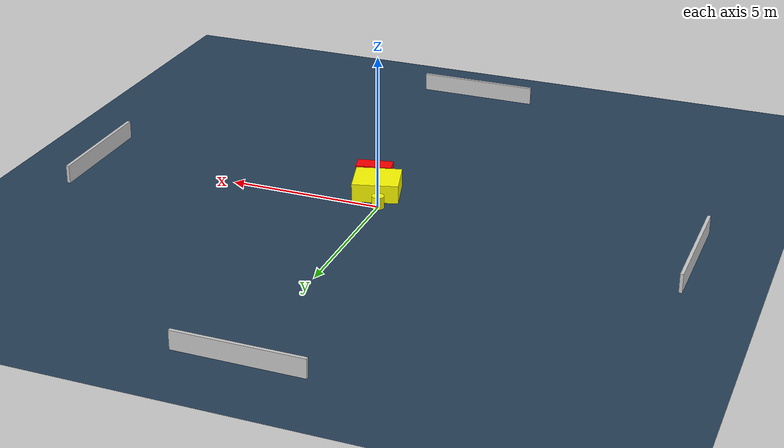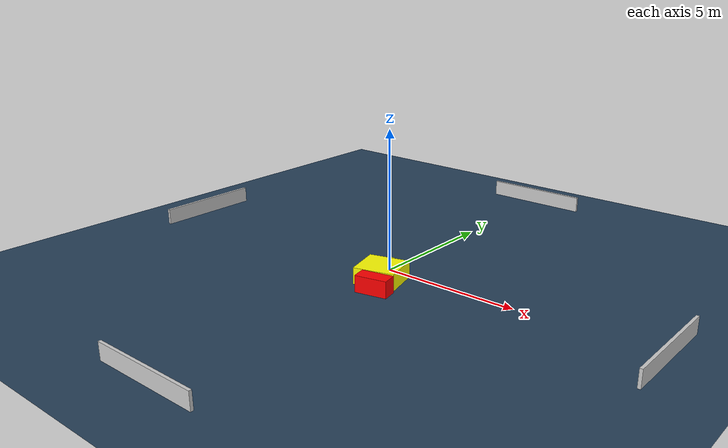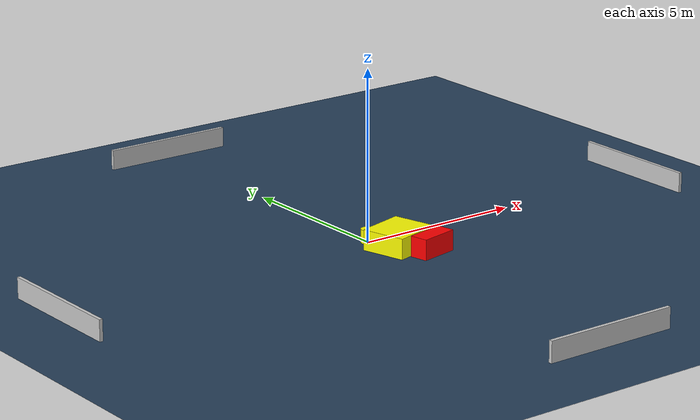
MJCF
<?xml version="1.0" ?>
<mujoco model="generated_environment">
  <option timestep="0.01" integrator="RK4" cone="elliptic"/>
  <default>
    <geom density="1"/>
  </default>
  <asset>
    <texture builtin="gradient" height="3072" name="skybox" rgb1="0.3 0.5 0.7" rgb2="0 0 0" type="skybox" width="512"/>
    <texture builtin="checker" height="300" name="groundplane" rgb1="0.2 0.3 0.4" rgb2="0.1 0.2 0.3" type="2d" width="300"/>
    <material name="groundplane" reflectance="0.2" texrepeat="5 5" texture="groundplane"/>
  </asset>
  <worldbody>
    <light dir="0 0 -1" directional="true" pos="0 0 1.5"/>
    <geom condim="3" friction="0.5 0.005 0.001" material="groundplane" name="floor" pos="0 0 0" size="0 0 0.05" type="plane"/>
    <body name="walls">
      <geom name="wall_1" condim="4" pos="-10.0 0.0 0.3" rgba="0.800000011920929 0.800000011920929 0.800000011920929 1.0" size="0.05 2.0 0.3" type="box"/>
      <geom name="wall_2" condim="4" pos="10.0 0.0 0.3" rgba="0.800000011920929 0.800000011920929 0.800000011920929 1.0" size="0.05 2.0 0.3" type="box"/>
      <geom name="wall_3" condim="4" pos="0.0 -10.0 0.3" rgba="0.800000011920929 0.800000011920929 0.800000011920929 1.0" size="2.0 0.05 0.3" type="box"/>
      <geom name="wall_4" condim="4" pos="0.0 10.0 0.3" rgba="0.800000011920929 0.800000011920929 0.800000011920929 1.0" size="2.0 0.05 0.3" type="box"/>
    </body>
    <body name="robot">
      <joint name="joint_x" type="slide" pos="0 0 0" axis="1 0 0"/>
      <joint name="joint_y" type="slide" pos="0 0 0" axis="0 1 0"/>
      <geom name="robot" type="cylinder" pos="0.0 0.0 0.2" size="0.2 0.2 0.0" mass="5.0" friction="1.0 0.005 0.0001" condim="4" rgba="1.0 1.0 0.0 1.0"/>
    </body>
    <body name="obstacle_1_movable">
      <geom name="obstacle_1_movable" condim="4" pos="0.38363895928231684 -0.9081856657554188 0.3" euler="0 0 105.17780614812273" friction="0.0 0.005 0.001" rgba="1.0 1.0 0.0 1.0" size="0.6656669312196164 0.7411901872105437 0.3" type="box" mass="0.1"/>
      <joint type="free"/>
    </body>
    <body name="obstacle_2_static">
      <geom name="obstacle_2_static" condim="4" pos="0.8282747809896861 -1.8177053743310703 0.3" euler="0 0 101.7834820174718" friction="0.0 0.005 0.001" rgba="1.0 0.0 0.0 1.0" size="0.26434794199485756 0.5820932224059231 0.3" type="box"/>
    </body>
  </worldbody>
  <actuator>
    <motor name="actuator_x" joint="joint_x" gear="1" ctrlrange="-1 1"/>
    <motor name="actuator_y" joint="joint_y" gear="1" ctrlrange="-1 1"/>
  </actuator>
</mujoco>
